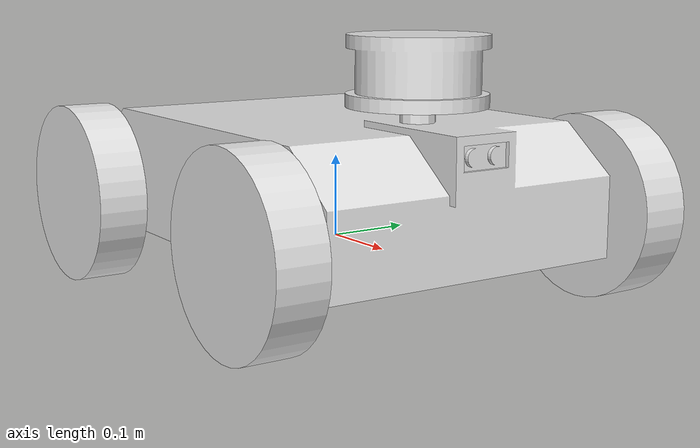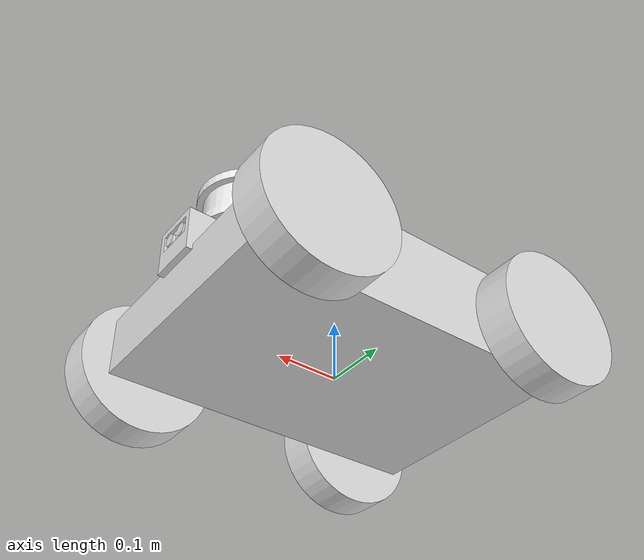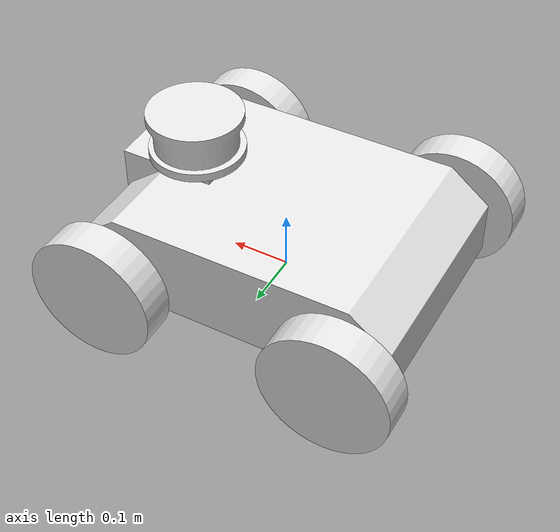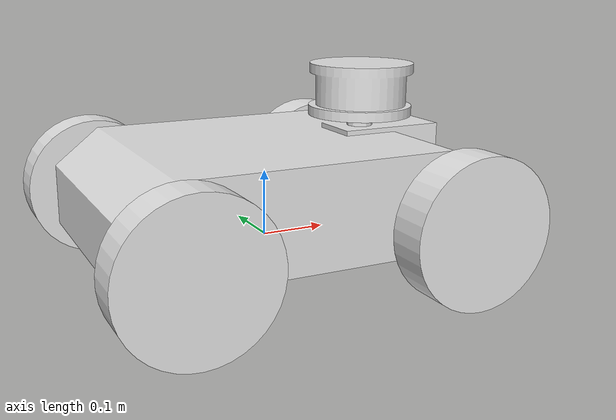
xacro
<?xml version="1.0"?>
<robot name="rover" xmlns:xacro="http://www.ros.org/wiki/xacro">
<xacro:include filename="$(find rover_description)/urdf/rover.gazebo" />

  <link name="base_footprint"/>

  <joint name="base_link_joint" type="fixed">
    <origin xyz="0 0 0" rpy="0 0 0"/>
    <parent link="base_footprint"/>
    <child link="base_link"/>
  </joint>

  <link name="base_link">
    <inertial>
      <origin xyz="0 0 0" rpy="-1.5708 0 0" />
      <mass value="5" />
      <inertia
        ixx="1E-05"
        ixy="0"
        ixz="0"
        iyy="1E-05"
        iyz="0"
        izz="1E-04" />
    </inertial>

    <visual>
      <origin xyz="0 0 0" rpy="-1.5708 0 0" />
      <geometry>
        <mesh filename="package://rover_description/meshes/base_link.STL" />
      </geometry>
      <material name="">
        <color rgba="0.89412 0.89412 0.89412 1" />
      </material>
    </visual>

    <collision>
      <origin xyz="0 0 0" rpy="-1.5708 0 0" />
      <geometry>
        <mesh filename="package://rover_description/meshes/base_link.STL" />
      </geometry>
    </collision>
  </link>

  <link name="camera_link">
    <inertial>
      <origin xyz="0 0 0" rpy="0 0 0" />
      <mass value="0.5" />
      <inertia
        ixx="1E-05"
        ixy="0"
        ixz="0"
        iyy="1E-05"
        iyz="0"
        izz="1E-04" />
    </inertial>

    <visual>
      <origin xyz="0 0 0" rpy="0 0 0" />
      <geometry>
        <mesh filename="package://rover_description/meshes/camera_link.STL" />
      </geometry>
      <material name="">
        <color rgba="0.89412 0.89412 0.89412 1" />
      </material>
    </visual>

    <collision>
      <origin xyz="0 0 0" rpy="0 0 0" />
      <geometry>
        <mesh filename="package://rover_description/meshes/camera_link.STL" />
      </geometry>
    </collision>
  </link>

  <joint name="camera_joint" type="fixed">
    <origin xyz="0.2625 0 0.13375 " rpy="0 0 0" />
    <parent link="base_link" />
    <child link="camera_link" />
    <axis xyz="0 0 0" />
  </joint>

  <link name="lidar_link">
    <inertial>
      <origin xyz="0 0 0" rpy="0 0 0" />
      <mass value="1" />
      <inertia
        ixx="1E-05"
        ixy="0"
        ixz="0"
        iyy="1E-05"
        iyz="0"
        izz="1E-04" />
    </inertial>

    <visual>
      <origin xyz="0 0 0" rpy="0 0 0" />
      <geometry>
        <mesh filename="package://rover_description/meshes/lidar_link.STL" />
      </geometry>
      <material name="">
        <color rgba="0.89412 0.89412 0.89412 1" />
      </material>
    </visual>

    <collision>
      <origin xyz="0 0 0" rpy="0 0 0" />
      <geometry>
        <mesh filename="package://rover_description/meshes/lidar_link.STL" />
      </geometry>
    </collision>
  </link>

  <joint name="lidar_joint" type="fixed">
    <origin xyz="0.16614 0 0.215" rpy="0 0 0" />
    <parent link="base_link" />
    <child link="lidar_link" />
    <axis xyz="0 0 0" />
  </joint>

  <link name="imu_link">
    <inertial>
      <origin xyz="0 0 0" rpy="0 0 0" />
      <mass value="0.005" />
      <inertia
        ixx="1E-05"
        ixy="0"
        ixz="0"
        iyy="1E-05"
        iyz="0"
        izz="1E-04" />
    </inertial>

    <visual>
      <origin xyz="0 0 0" rpy="0 0 0" />
      <geometry>
        <mesh filename="package://rover_description/meshes/imu_link.STL" />
      </geometry>
      <material name="">
        <color rgba="0.89412 0.89412 0.89412 1" />
      </material>
    </visual>

    <collision>
      <origin xyz="0 0 0" rpy="0 0 0" />
      <geometry>
        <mesh filename="package://rover_description/meshes/imu_link.STL" />
      </geometry>
    </collision>
  </link>

  <joint name="imu_joint" type="fixed">
    <origin xyz="0 0 0.0675" rpy="0 0 0" />
    <parent link="base_link" />
    <child link="imu_link" />
    <axis xyz="0 0 0" />
  </joint>

  <link name="fl_wheel_link">
    <inertial>
      <origin xyz="0 -0.03 0" rpy="0 0 0" />
      <mass value="0.75" />
      <inertia
        ixx="1E-05"
        ixy="0"
        ixz="0"
        iyy="1E-05"
        iyz="0"
        izz="1E-05" />
    </inertial>

    <visual>
      <origin xyz="0 -0.03 0" rpy="0 0 0" />
      <geometry>
        <mesh filename="package://rover_description/meshes/fl_wheel_link.STL" />
      </geometry>
      <material name="">
        <color rgba="0.89412 0.89412 0.89412 1" />
      </material>
    </visual>

    <collision>
      <origin xyz="0 -0.03 0" rpy="0 0 0" />
      <geometry>
        <mesh filename="package://rover_description/meshes/fl_wheel_link.STL" />
      </geometry>
      <surface>
        <friction>
          <ode>
            <mu>1.5</mu>
            <mu2>1.5</mu2>
          </ode>
        </friction>
      </surface>
    </collision>
  </link>

  <joint name="fl_wheel_joint" type="continuous">
    <origin xyz="0.205 0.24 0.0475 " rpy="0 0 0" />
    <parent link="base_link" />
    <child link="fl_wheel_link" />
    <axis xyz="0 1 0" />
  </joint>

  <link name="fr_wheel_link">
    <inertial>
      <origin xyz="0 0.03 0" rpy="0 0 0" />
      <mass value="0.75" />
      <inertia
        ixx="1E-05"
        ixy="0"
        ixz="0"
        iyy="1E-05"
        iyz="0"
        izz="1E-05" />
    </inertial>

    <visual>
      <origin xyz="0 0.03 0" rpy="0 0 0" />
      <geometry>
        <mesh filename="package://rover_description/meshes/fr_wheel_link.STL" />
      </geometry>
      <material name="">
        <color rgba="0.89412 0.89412 0.89412 1" />
      </material>
    </visual>

    <collision>
      <origin xyz="0 0.03 0" rpy="0 0 0" />
      <geometry>
        <mesh filename="package://rover_description/meshes/fr_wheel_link.STL" />
      </geometry>
      <surface>
        <friction>
          <ode>
            <mu>1.5</mu>
            <mu2>1.5</mu2>
          </ode>
        </friction>
      </surface>
    </collision>
  </link>

  <joint name="fr_wheel_joint" type="continuous">
    <origin xyz="0.205 -0.24 0.0475 " rpy="0 0 0" />
    <parent link="base_link" />
    <child link="fr_wheel_link" />
    <axis xyz="0 1 0" />
  </joint>

  <link name="rl_wheel_link">
    <inertial>
      <origin xyz="0 -0.03 0" rpy="0 0 0" />
      <mass value="1.5" />
      <inertia
        ixx="1E-05"
        ixy="0"
        ixz="0"
        iyy="1E-05"
        iyz="0"
        izz="1E-05" />
    </inertial>

    <visual>
      <origin xyz="0 -0.03 0" rpy="0 0 0" />
      <geometry>
        <mesh filename="package://rover_description/meshes/rl_wheel_link.STL" />
      </geometry>
      <material name="">
        <color rgba="0.89412 0.89412 0.89412 1" />
      </material>
    </visual>

    <collision>
      <origin xyz="0 -0.03 0" rpy="0 0 0" />
      <geometry>
        <mesh filename="package://rover_description/meshes/rl_wheel_link.STL" />
      </geometry>
      <surface>
        <friction>
          <ode>
            <mu>1.5</mu>
            <mu2>1.5</mu2>
          </ode>
        </friction>
      </surface>
    </collision>
  </link>

  <joint name="rl_wheel_joint" type="continuous">
    <origin xyz="-0.205 0.24 0.0475" rpy="0 0 0" />
    <parent link="base_link" />
    <child link="rl_wheel_link" />
    <axis xyz="0 1 0" />
  </joint>

  <link name="rr_wheel_link">
    <inertial>
      <origin xyz="0 0.03 0" rpy="0 0 0" />
      <mass value="1.5" />
      <inertia
        ixx="1E-05"
        ixy="0"
        ixz="0"
        iyy="1E-05"
        iyz="0"
        izz="1E-05" />
    </inertial>

    <visual>
      <origin xyz="0 0.03 0" rpy="0 0 0" />
      <geometry>
        <mesh filename="package://rover_description/meshes/rr_wheel_link.STL" />
      </geometry>
      <material name="">
        <color rgba="0.89412 0.89412 0.89412 1" />
      </material>
    </visual>

    <collision>
      <origin xyz="0 0.03 0" rpy="0 0 0" />
      <geometry>
        <mesh filename="package://rover_description/meshes/rr_wheel_link.STL" />
      </geometry>
      <surface>
        <friction>
          <ode>
            <mu>1.5</mu>
            <mu2>1.5</mu2>
          </ode>
        </friction>
      </surface>
    </collision>
  </link>

  <joint name="rr_wheel_joint" type="continuous">
    <origin xyz="-0.205 -0.24 0.0475" rpy="0 0 0" />
    <parent link="base_link" />
    <child link="rr_wheel_link" />
    <axis xyz="0 1 0" />
  </joint>
</robot>
